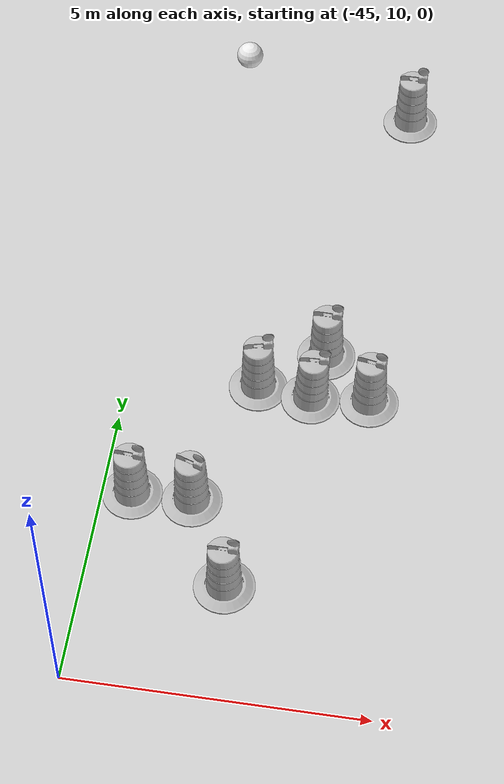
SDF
<sdf version="1.7">
 <world name="default">
  <model name="ground_plane">
   <static>1</static>
   <link name="link">
    <collision name="collision">
     <geometry><plane><normal>0 0 1</normal><size>100 100</size></plane></geometry>
     <surface>
      <contact><collide_bitmask>65535</collide_bitmask></contact>
      <friction><ode><mu>100</mu><mu2>50</mu2></ode></friction>
     </surface>
    </collision>
    <visual name="visual">
     <cast_shadows>0</cast_shadows>
     <geometry><plane><normal>0 0 1</normal><size>100 100</size></plane></geometry>
     <material>
      <script><uri>file://media/materials/scripts/gazebo.material</uri><name>Gazebo/Grey</name></script>
     </material>
    </visual>
   </link>
  </model>
  <model name="Construction Barrel_6">
   <link name="link">
    <inertial>
     <pose>0 0 0.4 0 -0 0</pose>
     <mass>500</mass>
     <inertia><ixx>51.2096</ixx><iyy>51.2096</iyy><izz>25</izz><ixy>0</ixy><ixz>0</ixz><iyz>0</iyz></inertia>
    </inertial>
    <collision name="collision">
     <geometry><mesh><uri>model://construction_barrel/meshes/construction_barrel.dae</uri></mesh></geometry>
    </collision>
    <visual name="visual">
     <geometry><mesh><uri>model://construction_barrel/meshes/construction_barrel.dae</uri></mesh></geometry>
    </visual>
   </link>
   <pose>-43.4737 13.5254 0.024556 0 -1e-06 -0.332292</pose>
  </model>
  <model name="Construction Barrel_17">
   <link name="link">
    <inertial>
     <pose>0 0 0.4 0 -0 0</pose>
     <mass>500</mass>
     <inertia><ixx>51.2096</ixx><iyy>51.2096</iyy><izz>25</izz><ixy>0</ixy><ixz>0</ixz><iyz>0</iyz></inertia>
    </inertial>
    <collision name="collision">
     <geometry><mesh><uri>model://construction_barrel/meshes/construction_barrel.dae</uri></mesh></geometry>
    </collision>
    <visual name="visual">
     <geometry><mesh><uri>model://construction_barrel/meshes/construction_barrel.dae</uri></mesh></geometry>
    </visual>
   </link>
   <pose>-42.6749 12.0005 0.024555 3e-06 0 0.000146</pose>
  </model>
  <model name="Construction Barrel_18">
   <link name="link">
    <inertial>
     <pose>0 0 0.4 0 -0 0</pose>
     <mass>500</mass>
     <inertia><ixx>51.2096</ixx><iyy>51.2096</iyy><izz>25</izz><ixy>0</ixy><ixz>0</ixz><iyz>0</iyz></inertia>
    </inertial>
    <collision name="collision">
     <geometry><mesh><uri>model://construction_barrel/meshes/construction_barrel.dae</uri></mesh></geometry>
    </collision>
    <visual name="visual">
     <geometry><mesh><uri>model://construction_barrel/meshes/construction_barrel.dae</uri></mesh></geometry>
    </visual>
   </link>
   <pose>-44.488 13.5214 0.024555 2e-06 1e-06 -0.088866</pose>
  </model>
  <model name="Construction Barrel_19">
   <link name="link">
    <inertial>
     <pose>0 0 0.4 0 -0 0</pose>
     <mass>500</mass>
     <inertia><ixx>51.2096</ixx><iyy>51.2096</iyy><izz>25</izz><ixy>0</ixy><ixz>0</ixz><iyz>0</iyz></inertia>
    </inertial>
    <collision name="collision">
     <geometry><mesh><uri>model://construction_barrel/meshes/construction_barrel.dae</uri></mesh></geometry>
    </collision>
    <visual name="visual">
     <geometry><mesh><uri>model://construction_barrel/meshes/construction_barrel.dae</uri></mesh></geometry>
    </visual>
   </link>
   <pose>-42.7325 15.9809 0.02323 0.000897 0.002809 0.245742</pose>
  </model>
  <model name="Construction Barrel_20">
   <link name="link">
    <inertial>
     <pose>0 0 0.4 0 -0 0</pose>
     <mass>500</mass>
     <inertia><ixx>51.2096</ixx><iyy>51.2096</iyy><izz>25</izz><ixy>0</ixy><ixz>0</ixz><iyz>0</iyz></inertia>
    </inertial>
    <collision name="collision">
     <geometry><mesh><uri>model://construction_barrel/meshes/construction_barrel.dae</uri></mesh></geometry>
    </collision>
    <visual name="visual">
     <geometry><mesh><uri>model://construction_barrel/meshes/construction_barrel.dae</uri></mesh></geometry>
    </visual>
   </link>
   <pose>-41.7997 15.8479 0.050776 0.030671 0.041705 0.0745</pose>
  </model>
  <model name="Construction Barrel_21">
   <link name="link">
    <inertial>
     <pose>0 0 0.4 0 -0 0</pose>
     <mass>500</mass>
     <inertia><ixx>51.2096</ixx><iyy>51.2096</iyy><izz>25</izz><ixy>0</ixy><ixz>0</ixz><iyz>0</iyz></inertia>
    </inertial>
    <collision name="collision">
     <geometry><mesh><uri>model://construction_barrel/meshes/construction_barrel.dae</uri></mesh></geometry>
    </collision>
    <visual name="visual">
     <geometry><mesh><uri>model://construction_barrel/meshes/construction_barrel.dae</uri></mesh></geometry>
    </visual>
   </link>
   <pose>-41.6498 16.8073 0.023799 0.000835 -4e-06 -0.01707</pose>
  </model>
  <model name="Construction Barrel_22">
   <link name="link">
    <inertial>
     <pose>0 0 0.4 0 -0 0</pose>
     <mass>500</mass>
     <inertia><ixx>51.2096</ixx><iyy>51.2096</iyy><izz>25</izz><ixy>0</ixy><ixz>0</ixz><iyz>0</iyz></inertia>
    </inertial>
    <collision name="collision">
     <geometry><mesh><uri>model://construction_barrel/meshes/construction_barrel.dae</uri></mesh></geometry>
    </collision>
    <visual name="visual">
     <geometry><mesh><uri>model://construction_barrel/meshes/construction_barrel.dae</uri></mesh></geometry>
    </visual>
   </link>
   <pose>-40.7845 15.9349 0.024553 8e-06 1e-06 -0.185815</pose>
  </model>
  <model name="Construction Barrel_23">
   <link name="link">
    <inertial>
     <pose>0 0 0.4 0 -0 0</pose>
     <mass>500</mass>
     <inertia><ixx>51.2096</ixx><iyy>51.2096</iyy><izz>25</izz><ixy>0</ixy><ixz>0</ixz><iyz>0</iyz></inertia>
    </inertial>
    <collision name="collision">
     <geometry><mesh><uri>model://construction_barrel/meshes/construction_barrel.dae</uri></mesh></geometry>
    </collision>
    <visual name="visual">
     <geometry><mesh><uri>model://construction_barrel/meshes/construction_barrel.dae</uri></mesh></geometry>
    </visual>
   </link>
   <pose>-40.7945 22.4761 0.024555 3e-06 1e-06 0.009945</pose>
  </model>
  <model name="flag_clone">
   <link name="link_0">
    <inertial>
     <mass>1</mass>
     <inertia><ixx>0.1</ixx><ixy>0</ixy><ixz>0</ixz><iyy>0.1</iyy><iyz>0</iyz><izz>0.1</izz></inertia>
    </inertial>
    <pose>0 -1e-06 0 0 -0 0</pose>
    <visual name="visual">
     <geometry><sphere><radius>0.25</radius></sphere></geometry>
     <material>
      <lighting>1</lighting>
      <script><uri>file://media/materials/scripts/gazebo.material</uri><name>Gazebo/White</name></script>
      <shader type="pixel"><normal_map>__default__</normal_map></shader>
      <ambient>0.3 0.3 0.3 1</ambient>
      <diffuse>0.7 0.7 0.7 1</diffuse>
      <specular>0.01 0.01 0.01 1</specular>
      <emissive>0 0 0 1</emissive>
     </material>
    </visual>
   </link>
   <static>0</static>
   <pose>-44.0274 23.3395 0.5 0 -0 0</pose>
  </model>
 </world>
</sdf>
